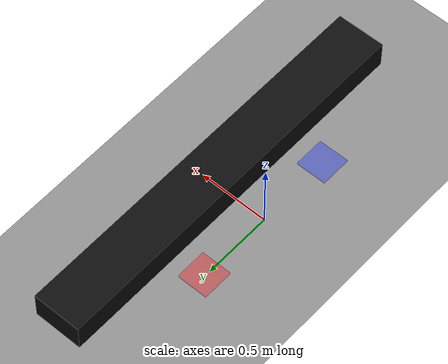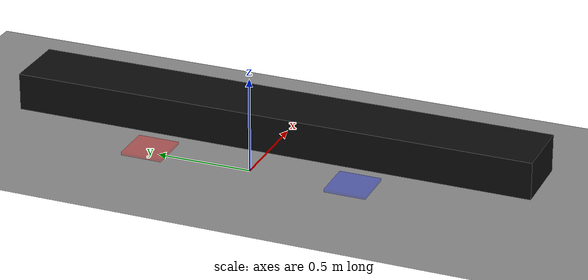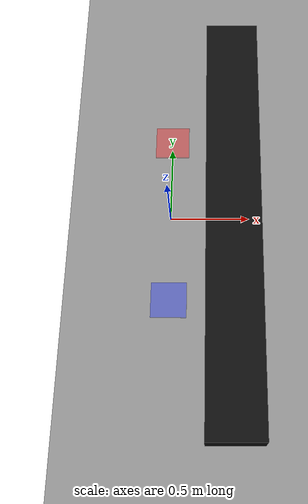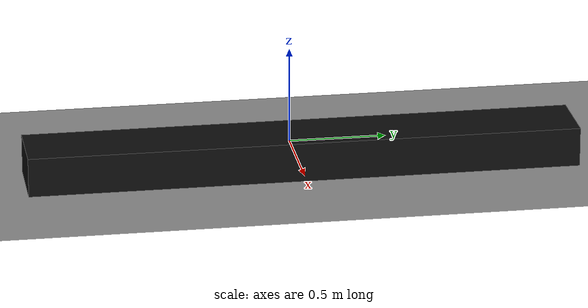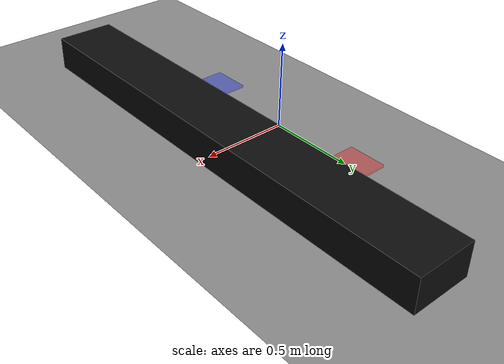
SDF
<?xml version="1.0" ?>
<sdf version="1.9">
  <world name="fp3_pick_place_world">

    <plugin
      filename="ignition-gazebo-physics-system"
      name="ignition::gazebo::systems::Physics"/>

    <plugin
      filename="ignition-gazebo-scene-broadcaster-system"
      name="ignition::gazebo::systems::SceneBroadcaster"/>

    <plugin
      filename="ignition-gazebo-user-commands-system"
      name="ignition::gazebo::systems::UserCommands"/>

    <plugin
      filename="ignition-gazebo-sensors-system"
      name="ignition::gazebo::systems::Sensors">
      <render_engine>ogre2</render_engine>
    </plugin>

    <physics name="default_physics" type="ode">
      <max_step_size>0.001</max_step_size>
      <real_time_factor>1.0</real_time_factor>
      <real_time_update_rate>1000</real_time_update_rate>
    </physics>

    <gravity>0 0 -9.81</gravity>

    <scene>
      <ambient>0.45 0.45 0.45 1</ambient>
      <background>0.70 0.70 0.70 1</background>
      <shadows>true</shadows>
    </scene>

    <light name="sun" type="directional">
      <cast_shadows>true</cast_shadows>
      <pose>0 0 5 0 0 0</pose>
      <diffuse>0.9 0.9 0.9 1</diffuse>
      <specular>0.2 0.2 0.2 1</specular>
      <direction>-0.5 0.2 -1</direction>
    </light>

    <model name="ground_plane">
      <static>true</static>
      <link name="link">
        <collision name="collision">
          <geometry>
            <plane>
              <normal>0 0 1</normal>
              <size>5 5</size>
            </plane>
          </geometry>
          <surface>
            <friction>
              <ode>
                <mu>1.0</mu>
                <mu2>1.0</mu2>
              </ode>
            </friction>
          </surface>
        </collision>

        <visual name="visual">
          <geometry>
            <plane>
              <normal>0 0 1</normal>
              <size>5 5</size>
            </plane>
          </geometry>
          <material>
            <diffuse>0.55 0.55 0.55 1</diffuse>
          </material>
        </visual>
      </link>
    </model>

    <!-- Escena principal -->

    <include>
      <uri>model://conveyor</uri>
      <pose>0.40 0.00 0.00 0 0 1.5708</pose>
    </include>

    <include>
      <uri>model://red_goal</uri>
      <pose>0.00 0.55 0.025 0 0 0</pose>
    </include>

    <include>
      <uri>model://blue_goal</uri>
      <pose>0.00 -0.55 0.025 0 0 0</pose>
    </include>

    <!-- Cámara 1: top -->

    <model name="camera_top_conveyor">
      <static>true</static>
      <pose>0.40 0.00 1.60 0 1.5708 0</pose>

      <link name="link">
        <sensor name="camera_top_conveyor_sensor" type="camera">
          <always_on>false</always_on>
          <update_rate>15</update_rate>
          <topic>/camera_top_conveyor/image</topic>

          <camera name="camera_top_conveyor">
            <horizontal_fov>1.40</horizontal_fov>
            <image>
              <width>424</width>
              <height>240</height>
              <format>R8G8B8</format>
            </image>
            <clip>
              <near>0.02</near>
              <far>5.0</far>
            </clip>
            <camera_info_topic>/camera_top_conveyor/camera_info</camera_info_topic>
          </camera>
        </sensor>
      </link>
    </model>

    <!-- Cámara 2: frontal -->

    <model name="camera_front_conveyor">
      <static>true</static>
      <pose>1.10 0.00 0.65 0 0.45 3.14159</pose>

      <link name="link">
        <sensor name="camera_front_conveyor_sensor" type="camera">
          <always_on>false</always_on>
          <update_rate>15</update_rate>
          <topic>/camera_front_conveyor/image</topic>

          <camera name="camera_front_conveyor">
            <horizontal_fov>1.5708</horizontal_fov>
            <image>
              <width>424</width>
              <height>240</height>
              <format>R8G8B8</format>
            </image>
            <clip>
              <near>0.02</near>
              <far>5.0</far>
            </clip>
            <camera_info_topic>/camera_front_conveyor/camera_info</camera_info_topic>
          </camera>
        </sensor>
      </link>
    </model>

    <!-- Cámara 3: caballera -->

    <model name="camera_cabinet">
      <static>true</static>
      <pose>1.25 -1.10 1.20 0 0.65 2.35</pose>

      <link name="link">
        <sensor name="camera_cabinet_sensor" type="camera">
          <always_on>false</always_on>
          <update_rate>15</update_rate>
          <topic>/camera_cabinet/image</topic>

          <camera name="camera_cabinet">
            <horizontal_fov>1.45</horizontal_fov>
            <image>
              <width>424</width>
              <height>240</height>
              <format>R8G8B8</format>
            </image>
            <clip>
              <near>0.02</near>
              <far>6.0</far>
            </clip>
            <camera_info_topic>/camera_cabinet/camera_info</camera_info_topic>
          </camera>
        </sensor>
      </link>
    </model>

    <!-- Cámara 4: top alternativa -->

    <model name="camera_top_model">
      <static>true</static>
      <pose>0.55 0.00 1.35 0 1.5708 0</pose>

      <link name="link">
        <sensor name="camera_top_model_sensor" type="camera">
          <always_on>true</always_on>
          <update_rate>15</update_rate>
          <topic>/camera_top_model/image</topic>

          <camera name="camera_top_model">
            <horizontal_fov>1.45</horizontal_fov>
            <image>
              <width>424</width>
              <height>240</height>
              <format>R8G8B8</format>
            </image>
            <clip>
              <near>0.02</near>
              <far>6.0</far>
            </clip>
            <camera_info_topic>/camera_top_model/camera_info</camera_info_topic>
          </camera>
        </sensor>
      </link>
    </model>

  </world>
</sdf>

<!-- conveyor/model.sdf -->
<sdf version="1.9">
  <model name="conveyor">
    <static>true</static>

    <link name="belt_link">
      <collision name="belt_collision">
        <pose>0 0 0.10 0 0 0</pose>
        <geometry>
          <box>
            <!-- más larga y más alta -->
            <size>2.80 0.35 0.20</size>
          </box>
        </geometry>
        <surface>
          <friction>
            <ode>
              <mu>1.0</mu>
              <mu2>1.0</mu2>
            </ode>
          </friction>
        </surface>
      </collision>

      <visual name="belt_visual">
        <pose>0 0 0.10 0 0 0</pose>
        <geometry>
          <box>
            <size>2.80 0.35 0.20</size>
          </box>
        </geometry>
        <material>
          <ambient>0.05 0.05 0.05 1</ambient>
          <diffuse>0.05 0.05 0.05 1</diffuse>
        </material>
      </visual>
    </link>
  </model>
</sdf>

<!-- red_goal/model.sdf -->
<sdf version="1.9">
  <model name="red_goal">
    <static>true</static>

    <link name="base">
      <collision name="floor_collision">
        <geometry>
          <box>
            <size>0.22 0.22 0.015</size>
          </box>
        </geometry>
      </collision>

      <visual name="floor_visual">
        <geometry>
          <box>
            <size>0.22 0.22 0.015</size>
          </box>
        </geometry>
        <material>
          <diffuse>1.0 0.0 0.0 0.35</diffuse>
        </material>
      </visual>
    </link>
  </model>
</sdf>

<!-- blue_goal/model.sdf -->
<sdf version="1.9">
  <model name="blue_goal">
    <static>true</static>

    <link name="base">
      <collision name="floor_collision">
        <geometry>
          <box>
            <size>0.22 0.22 0.015</size>
          </box>
        </geometry>
      </collision>

      <visual name="floor_visual">
        <geometry>
          <box>
            <size>0.22 0.22 0.015</size>
          </box>
        </geometry>
        <material>
          <diffuse>0.0 0.1 1.0 0.35</diffuse>
        </material>
      </visual>
    </link>
  </model>
</sdf>
